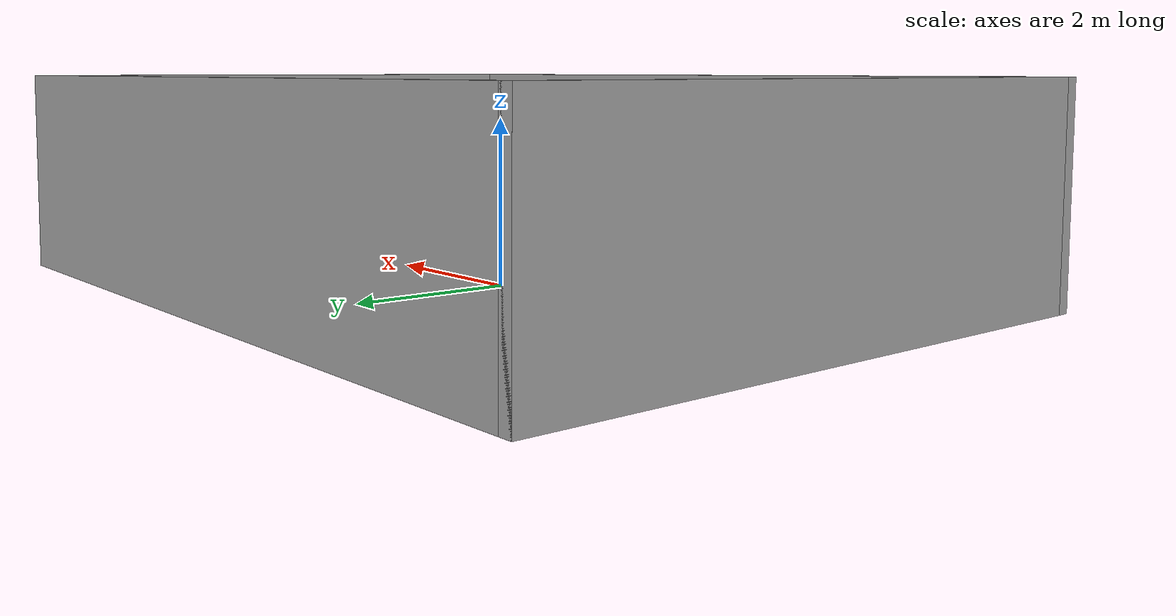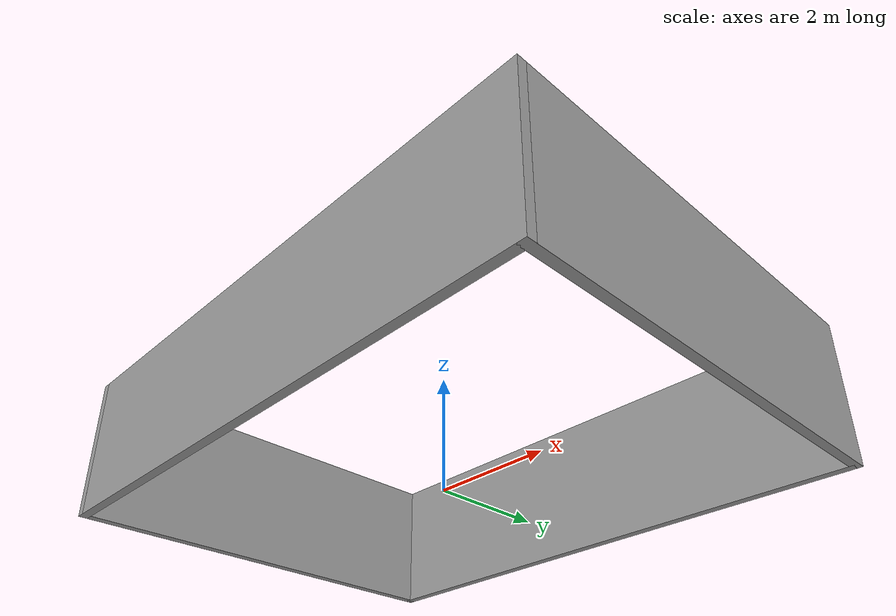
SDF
<?xml version='1.0'?>
<sdf version='1.6'>
  <model name='Map'>
    <pose frame=''>-0.051488 0.087006 0 0 -0 0</pose>
    <link name='Wall_0'>
      <collision name='Wall_0_Collision'>
        <geometry>
          <box>
            <size>10 0.15 2.5</size>
          </box>
        </geometry>
        <pose frame=''>0 0 1.25 0 -0 0</pose>
      </collision>
      <visual name='Wall_0_Visual'>
        <pose frame=''>0 0 1.25 0 -0 0</pose>
        <geometry>
          <box>
            <size>10 0.15 2.5</size>
          </box>
        </geometry>
        <material>
          <script>
            <uri>file://media/materials/scripts/gazebo.material</uri>
            <name>Gazebo/Grey</name>
          </script>
          <ambient>1 1 1 1</ambient>
        </material>
        <meta>
          <layer>0</layer>
        </meta>
      </visual>
      <pose frame=''>-0 3.675 0 0 -0 0</pose>
    </link>
    <link name='Wall_1'>
      <collision name='Wall_1_Collision'>
        <geometry>
          <box>
            <size>7.5 0.15 2.5</size>
          </box>
        </geometry>
        <pose frame=''>0 0 1.25 0 -0 0</pose>
      </collision>
      <visual name='Wall_1_Visual'>
        <pose frame=''>0 0 1.25 0 -0 0</pose>
        <geometry>
          <box>
            <size>7.5 0.15 2.5</size>
          </box>
        </geometry>
        <material>
          <script>
            <uri>file://media/materials/scripts/gazebo.material</uri>
            <name>Gazebo/Grey</name>
          </script>
          <ambient>1 1 1 1</ambient>
        </material>
        <meta>
          <layer>0</layer>
        </meta>
      </visual>
      <pose frame=''>4.925 -0 0 0 -0 -1.5708</pose>
    </link>
    <link name='Wall_2'>
      <collision name='Wall_2_Collision'>
        <geometry>
          <box>
            <size>10 0.15 2.5</size>
          </box>
        </geometry>
        <pose frame=''>0 0 1.25 0 -0 0</pose>
      </collision>
      <visual name='Wall_2_Visual'>
        <pose frame=''>0 0 1.25 0 -0 0</pose>
        <geometry>
          <box>
            <size>10 0.15 2.5</size>
          </box>
        </geometry>
        <material>
          <script>
            <uri>file://media/materials/scripts/gazebo.material</uri>
            <name>Gazebo/Grey</name>
          </script>
          <ambient>1 1 1 1</ambient>
        </material>
        <meta>
          <layer>0</layer>
        </meta>
      </visual>
      <pose frame=''>-0 -3.675 0 0 -0 3.14159</pose>
    </link>
    <link name='Wall_3'>
      <collision name='Wall_3_Collision'>
        <geometry>
          <box>
            <size>7.5 0.15 2.5</size>
          </box>
        </geometry>
        <pose frame=''>0 0 1.25 0 -0 0</pose>
      </collision>
      <visual name='Wall_3_Visual'>
        <pose frame=''>0 0 1.25 0 -0 0</pose>
        <geometry>
          <box>
            <size>7.5 0.15 2.5</size>
          </box>
        </geometry>
        <material>
          <script>
            <uri>file://media/materials/scripts/gazebo.material</uri>
            <name>Gazebo/Grey</name>
          </script>
          <ambient>1 1 1 1</ambient>
        </material>
        <meta>
          <layer>0</layer>
        </meta>
      </visual>
      <pose frame=''>-4.925 -0 0 0 -0 1.5708</pose>
    </link>
    <static>1</static>
  </model>
</sdf>
